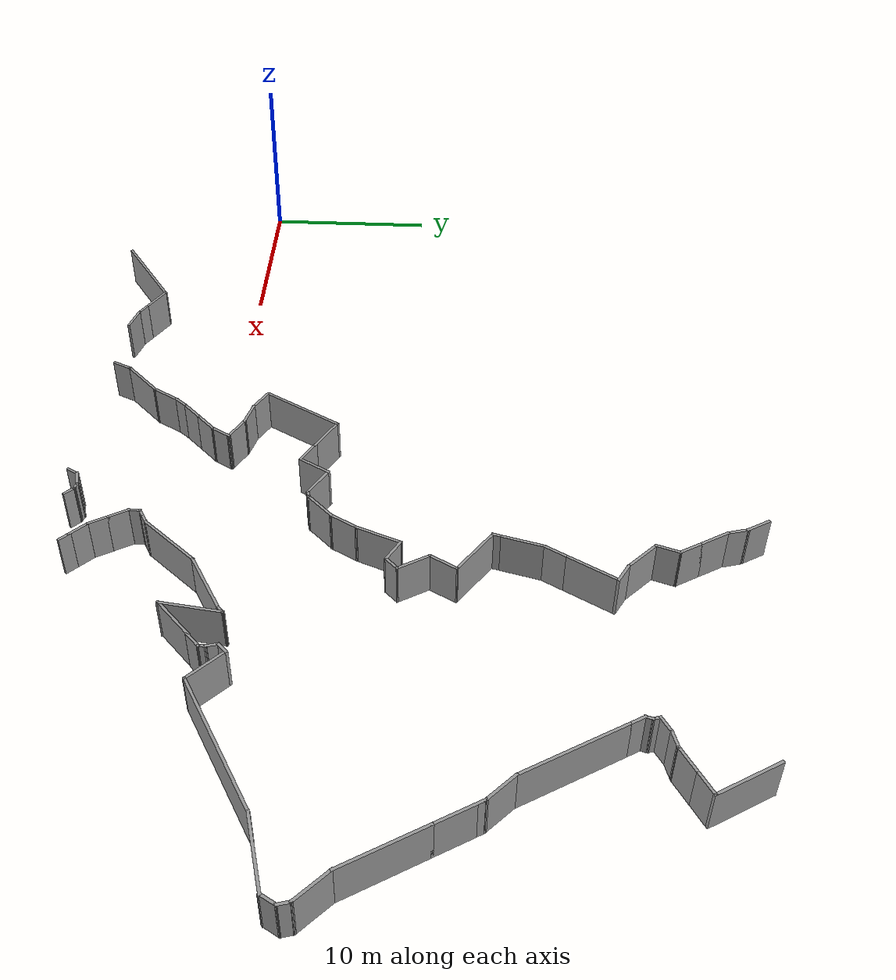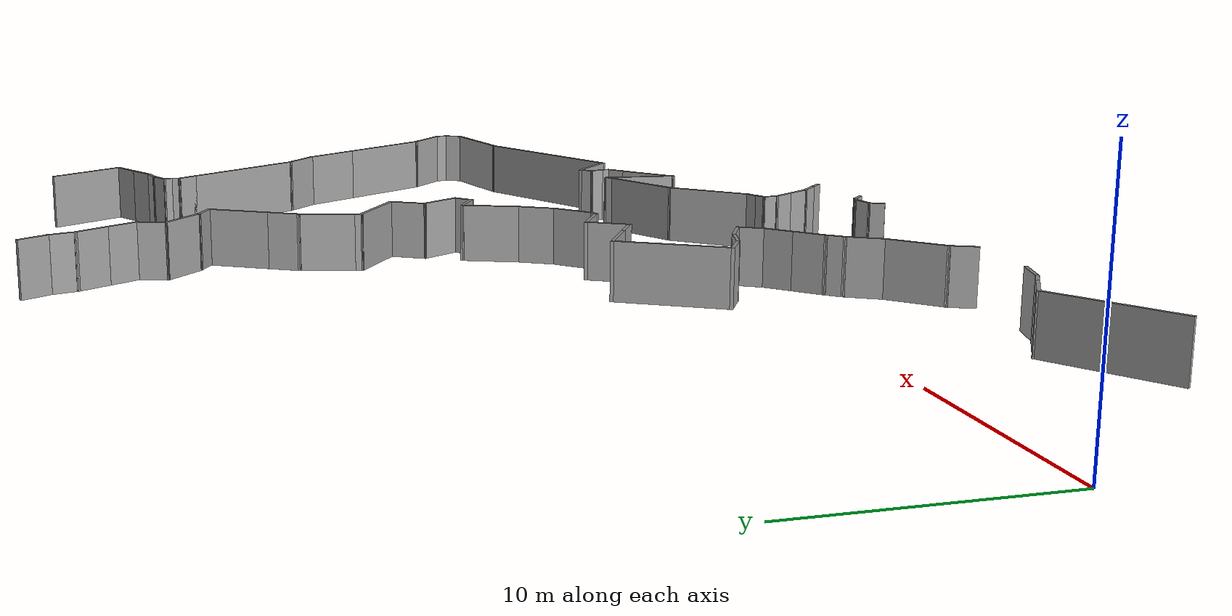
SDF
<sdf version="1.7">
 <model name="office_track1">
  <pose>2.3626 4.43866 0 0 -0 0</pose>
  <link name="Wall_178">
   <collision name="Wall_178_Collision">
    <geometry><box><size>1.75 0.15 2.5</size></box></geometry>
    <pose>0 0 1.25 0 -0 0</pose>
   </collision>
   <visual name="Wall_178_Visual">
    <pose>0 0 1.25 0 -0 0</pose>
    <geometry><box><size>1.75 0.15 2.5</size></box></geometry>
    <material>
     <script><uri>file://media/materials/scripts/gazebo.material</uri><name>Gazebo/Grey</name></script>
     <ambient>1 1 1 1</ambient>
    </material>
    <meta><layer>0</layer></meta>
   </visual>
   <pose>10.6173 -10.4052 0 0 -0 -0.523599</pose>
  </link>
  <link name="Wall_179">
   <collision name="Wall_179_Collision">
    <geometry><box><size>1 0.15 2.5</size></box></geometry>
    <pose>0 0 1.25 0 -0 0</pose>
   </collision>
   <visual name="Wall_179_Visual">
    <pose>0 0 1.25 0 -0 0</pose>
    <geometry><box><size>1 0.15 2.5</size></box></geometry>
    <material>
     <script><uri>file://media/materials/scripts/gazebo.material</uri><name>Gazebo/Grey</name></script>
     <ambient>1 1 1 1</ambient>
    </material>
    <meta><layer>0</layer></meta>
   </visual>
   <pose>11.6781 -11.0177 0 0 -0 -0.523599</pose>
  </link>
  <link name="Wall_180">
   <collision name="Wall_180_Collision">
    <geometry><box><size>1.5 0.15 2.5</size></box></geometry>
    <pose>0 0 1.25 0 -0 0</pose>
   </collision>
   <visual name="Wall_180_Visual">
    <pose>0 0 1.25 0 -0 0</pose>
    <geometry><box><size>1.5 0.15 2.5</size></box></geometry>
    <material>
     <script><uri>file://media/materials/scripts/gazebo.material</uri><name>Gazebo/Grey</name></script>
     <ambient>1 1 1 1</ambient>
    </material>
    <meta><layer>0</layer></meta>
   </visual>
   <pose>12.6982 -11.4049 0 0 -0 -0.261799</pose>
  </link>
  <link name="Wall_184">
   <collision name="Wall_184_Collision">
    <geometry><box><size>5.59276 0.15 2.5</size></box></geometry>
    <pose>0 0 1.25 0 -0 0</pose>
   </collision>
   <visual name="Wall_184_Visual">
    <pose>0 0 1.25 0 -0 0</pose>
    <geometry><box><size>5.59276 0.15 2.5</size></box></geometry>
    <material>
     <script><uri>file://media/materials/scripts/gazebo.material</uri><name>Gazebo/Grey</name></script>
     <ambient>1 1 1 1</ambient>
    </material>
    <meta><layer>0</layer></meta>
   </visual>
   <pose>7.66821 -11.5269 0 0 -0 -2.54824</pose>
  </link>
  <link name="Wall_186">
   <collision name="Wall_186_Collision">
    <geometry><box><size>1.75 0.15 2.5</size></box></geometry>
    <pose>0 0 1.25 0 -0 0</pose>
   </collision>
   <visual name="Wall_186_Visual">
    <pose>0 0 1.25 0 -0 0</pose>
    <geometry><box><size>1.75 0.15 2.5</size></box></geometry>
    <material>
     <script><uri>file://media/materials/scripts/gazebo.material</uri><name>Gazebo/Grey</name></script>
     <ambient>1 1 1 1</ambient>
    </material>
    <meta><layer>0</layer></meta>
   </visual>
   <pose>19.7211 -8.10952 0 0 -0 -2.0944</pose>
  </link>
  <link name="Wall_187">
   <collision name="Wall_187_Collision">
    <geometry><box><size>2.75 0.15 2.5</size></box></geometry>
    <pose>0 0 1.25 0 -0 0</pose>
   </collision>
   <visual name="Wall_187_Visual">
    <pose>0 0 1.25 0 -0 0</pose>
    <geometry><box><size>2.75 0.15 2.5</size></box></geometry>
    <material>
     <script><uri>file://media/materials/scripts/gazebo.material</uri><name>Gazebo/Grey</name></script>
     <ambient>1 1 1 1</ambient>
    </material>
    <meta><layer>0</layer></meta>
   </visual>
   <pose>18.4019 -9.72158 0 0 -0 -2.35619</pose>
  </link>
  <link name="Wall_188">
   <collision name="Wall_188_Collision">
    <geometry><box><size>1.24867 0.15 2.5</size></box></geometry>
    <pose>0 0 1.25 0 -0 0</pose>
   </collision>
   <visual name="Wall_188_Visual">
    <pose>0 0 1.25 0 -0 0</pose>
    <geometry><box><size>1.24867 0.15 2.5</size></box></geometry>
    <material>
     <script><uri>file://media/materials/scripts/gazebo.material</uri><name>Gazebo/Grey</name></script>
     <ambient>1 1 1 1</ambient>
    </material>
    <meta><layer>0</layer></meta>
   </visual>
   <pose>17.2513 -11.1391 0 0 -0 -2.00555</pose>
  </link>
  <link name="Wall_191">
   <collision name="Wall_191_Collision">
    <geometry><box><size>1.25 0.15 2.5</size></box></geometry>
    <pose>0 0 1.25 0 -0 0</pose>
   </collision>
   <visual name="Wall_191_Visual">
    <pose>0 0 1.25 0 -0 0</pose>
    <geometry><box><size>1.25 0.15 2.5</size></box></geometry>
    <material>
     <script><uri>file://media/materials/scripts/gazebo.material</uri><name>Gazebo/Grey</name></script>
     <ambient>1 1 1 1</ambient>
    </material>
    <meta><layer>0</layer></meta>
   </visual>
   <pose>22.802 -4.42998 0 0 -0 -2.0944</pose>
  </link>
  <link name="Wall_192">
   <collision name="Wall_192_Collision">
    <geometry><box><size>1.5 0.15 2.5</size></box></geometry>
    <pose>0 0 1.25 0 -0 0</pose>
   </collision>
   <visual name="Wall_192_Visual">
    <pose>0 0 1.25 0 -0 0</pose>
    <geometry><box><size>1.5 0.15 2.5</size></box></geometry>
    <material>
     <script><uri>file://media/materials/scripts/gazebo.material</uri><name>Gazebo/Grey</name></script>
     <ambient>1 1 1 1</ambient>
    </material>
    <meta><layer>0</layer></meta>
   </visual>
   <pose>22.0497 -5.38359 0 0 -0 -2.35619</pose>
  </link>
  <link name="Wall_193">
   <collision name="Wall_193_Collision">
    <geometry><box><size>1.5 0.15 2.5</size></box></geometry>
    <pose>0 0 1.25 0 -0 0</pose>
   </collision>
   <visual name="Wall_193_Visual">
    <pose>0 0 1.25 0 -0 0</pose>
    <geometry><box><size>1.5 0.15 2.5</size></box></geometry>
    <material>
     <script><uri>file://media/materials/scripts/gazebo.material</uri><name>Gazebo/Grey</name></script>
     <ambient>1 1 1 1</ambient>
    </material>
    <meta><layer>0</layer></meta>
   </visual>
   <pose>21.0951 -6.33819 0 0 -0 -2.35619</pose>
  </link>
  <link name="Wall_194">
   <collision name="Wall_194_Collision">
    <geometry><box><size>0.929811 0.15 2.5</size></box></geometry>
    <pose>0 0 1.25 0 -0 0</pose>
   </collision>
   <visual name="Wall_194_Visual">
    <pose>0 0 1.25 0 -0 0</pose>
    <geometry><box><size>0.929811 0.15 2.5</size></box></geometry>
    <material>
     <script><uri>file://media/materials/scripts/gazebo.material</uri><name>Gazebo/Grey</name></script>
     <ambient>1 1 1 1</ambient>
    </material>
    <meta><layer>0</layer></meta>
   </visual>
   <pose>20.3695 -7.11609 0 0 -0 -2.26122</pose>
  </link>
  <link name="Wall_196">
   <collision name="Wall_196_Collision">
    <geometry><box><size>1.5 0.15 2.5</size></box></geometry>
    <pose>0 0 1.25 0 -0 0</pose>
   </collision>
   <visual name="Wall_196_Visual">
    <pose>0 0 1.25 0 -0 0</pose>
    <geometry><box><size>1.5 0.15 2.5</size></box></geometry>
    <material>
     <script><uri>file://media/materials/scripts/gazebo.material</uri><name>Gazebo/Grey</name></script>
     <ambient>1 1 1 1</ambient>
    </material>
    <meta><layer>0</layer></meta>
   </visual>
   <pose>19.9361 -2.57714 0 0 -0 -0.523599</pose>
  </link>
  <link name="Wall_197">
   <collision name="Wall_197_Collision">
    <geometry><box><size>1.5 0.15 2.5</size></box></geometry>
    <pose>0 0 1.25 0 -0 0</pose>
   </collision>
   <visual name="Wall_197_Visual">
    <pose>0 0 1.25 0 -0 0</pose>
    <geometry><box><size>1.5 0.15 2.5</size></box></geometry>
    <material>
     <script><uri>file://media/materials/scripts/gazebo.material</uri><name>Gazebo/Grey</name></script>
     <ambient>1 1 1 1</ambient>
    </material>
    <meta><layer>0</layer></meta>
   </visual>
   <pose>21.1727 -3.08935 0 0 -0 -0.261799</pose>
  </link>
  <link name="Wall_198">
   <collision name="Wall_198_Collision">
    <geometry><box><size>1.57958 0.15 2.5</size></box></geometry>
    <pose>0 0 1.25 0 -0 0</pose>
   </collision>
   <visual name="Wall_198_Visual">
    <pose>0 0 1.25 0 -0 0</pose>
    <geometry><box><size>1.57958 0.15 2.5</size></box></geometry>
    <material>
     <script><uri>file://media/materials/scripts/gazebo.material</uri><name>Gazebo/Grey</name></script>
     <ambient>1 1 1 1</ambient>
    </material>
    <meta><layer>0</layer></meta>
   </visual>
   <pose>22.4508 -3.60886 0 0 -0 -0.503385</pose>
  </link>
  <link name="Wall_200">
   <collision name="Wall_200_Collision">
    <geometry><box><size>5 0.15 2.5</size></box></geometry>
    <pose>0 0 1.25 0 -0 0</pose>
   </collision>
   <visual name="Wall_200_Visual">
    <pose>0 0 1.25 0 -0 0</pose>
    <geometry><box><size>5 0.15 2.5</size></box></geometry>
    <material>
     <script><uri>file://media/materials/scripts/gazebo.material</uri><name>Gazebo/Grey</name></script>
     <ambient>1 1 1 1</ambient>
    </material>
    <meta><layer>0</layer></meta>
   </visual>
   <pose>20.5641 -0.139533 0 0 -0 1.0472</pose>
  </link>
  <link name="Wall_201">
   <collision name="Wall_201_Collision">
    <geometry><box><size>2.25 0.15 2.5</size></box></geometry>
    <pose>0 0 1.25 0 -0 0</pose>
   </collision>
   <visual name="Wall_201_Visual">
    <pose>0 0 1.25 0 -0 0</pose>
    <geometry><box><size>2.25 0.15 2.5</size></box></geometry>
    <material>
     <script><uri>file://media/materials/scripts/gazebo.material</uri><name>Gazebo/Grey</name></script>
     <ambient>1 1 1 1</ambient>
    </material>
    <meta><layer>0</layer></meta>
   </visual>
   <pose>22.6859 1.43558 0 0 -0 -0.523599</pose>
  </link>
  <link name="Wall_202">
   <collision name="Wall_202_Collision">
    <geometry><box><size>1.5 0.15 2.5</size></box></geometry>
    <pose>0 0 1.25 0 -0 0</pose>
   </collision>
   <visual name="Wall_202_Visual">
    <pose>0 0 1.25 0 -0 0</pose>
    <geometry><box><size>1.5 0.15 2.5</size></box></geometry>
    <material>
     <script><uri>file://media/materials/scripts/gazebo.material</uri><name>Gazebo/Grey</name></script>
     <ambient>1 1 1 1</ambient>
    </material>
    <meta><layer>0</layer></meta>
   </visual>
   <pose>24.1798 0.573079 0 0 -0 -0.523599</pose>
  </link>
  <link name="Wall_203">
   <collision name="Wall_203_Collision">
    <geometry><box><size>2 0.15 2.5</size></box></geometry>
    <pose>0 0 1.25 0 -0 0</pose>
   </collision>
   <visual name="Wall_203_Visual">
    <pose>0 0 1.25 0 -0 0</pose>
    <geometry><box><size>2 0.15 2.5</size></box></geometry>
    <material>
     <script><uri>file://media/materials/scripts/gazebo.material</uri><name>Gazebo/Grey</name></script>
     <ambient>1 1 1 1</ambient>
    </material>
    <meta><layer>0</layer></meta>
   </visual>
   <pose>25.2269 1.03665 0 0 -0 1.0472</pose>
  </link>
  <link name="Wall_204">
   <collision name="Wall_204_Collision">
    <geometry><box><size>2 0.15 2.5</size></box></geometry>
    <pose>0 0 1.25 0 -0 0</pose>
   </collision>
   <visual name="Wall_204_Visual">
    <pose>0 0 1.25 0 -0 0</pose>
    <geometry><box><size>2 0.15 2.5</size></box></geometry>
    <material>
     <script><uri>file://media/materials/scripts/gazebo.material</uri><name>Gazebo/Grey</name></script>
     <ambient>1 1 1 1</ambient>
    </material>
    <meta><layer>0</layer></meta>
   </visual>
   <pose>26.4904 1.37523 0 0 -0 -0.523599</pose>
  </link>
  <link name="Wall_205">
   <collision name="Wall_205_Collision">
    <geometry><box><size>0.5 0.15 2.5</size></box></geometry>
    <pose>0 0 1.25 0 -0 0</pose>
   </collision>
   <visual name="Wall_205_Visual">
    <pose>0 0 1.25 0 -0 0</pose>
    <geometry><box><size>0.5 0.15 2.5</size></box></geometry>
    <material>
     <script><uri>file://media/materials/scripts/gazebo.material</uri><name>Gazebo/Grey</name></script>
     <ambient>1 1 1 1</ambient>
    </material>
    <meta><layer>0</layer></meta>
   </visual>
   <pose>27.4605 0.95802 0 0 -0 0.261799</pose>
  </link>
  <link name="Wall_206">
   <collision name="Wall_206_Collision">
    <geometry><box><size>2 0.15 2.5</size></box></geometry>
    <pose>0 0 1.25 0 -0 0</pose>
   </collision>
   <visual name="Wall_206_Visual">
    <pose>0 0 1.25 0 -0 0</pose>
    <geometry><box><size>2 0.15 2.5</size></box></geometry>
    <material>
     <script><uri>file://media/materials/scripts/gazebo.material</uri><name>Gazebo/Grey</name></script>
     <ambient>1 1 1 1</ambient>
    </material>
    <meta><layer>0</layer></meta>
   </visual>
   <pose>28.2837 1.65739 0 0 -0 0.785398</pose>
  </link>
  <link name="Wall_207">
   <collision name="Wall_207_Collision">
    <geometry><box><size>1.75 0.15 2.5</size></box></geometry>
    <pose>0 0 1.25 0 -0 0</pose>
   </collision>
   <visual name="Wall_207_Visual">
    <pose>0 0 1.25 0 -0 0</pose>
    <geometry><box><size>1.75 0.15 2.5</size></box></geometry>
    <material>
     <script><uri>file://media/materials/scripts/gazebo.material</uri><name>Gazebo/Grey</name></script>
     <ambient>1 1 1 1</ambient>
    </material>
    <meta><layer>0</layer></meta>
   </visual>
   <pose>29.3377 3.00428 0 0 -0 1.0472</pose>
  </link>
  <link name="Wall_209">
   <collision name="Wall_209_Collision">
    <geometry><box><size>2.67086 0.15 2.5</size></box></geometry>
    <pose>0 0 1.25 0 -0 0</pose>
   </collision>
   <visual name="Wall_209_Visual">
    <pose>0 0 1.25 0 -0 0</pose>
    <geometry><box><size>2.67086 0.15 2.5</size></box></geometry>
    <material>
     <script><uri>file://media/materials/scripts/gazebo.material</uri><name>Gazebo/Grey</name></script>
     <ambient>1 1 1 1</ambient>
    </material>
    <meta><layer>0</layer></meta>
   </visual>
   <pose>30.2114 4.86513 0 0 -0 -1.95608</pose>
  </link>
  <link name="Wall_211">
   <collision name="Wall_211_Collision">
    <geometry><box><size>1.5 0.15 2.5</size></box></geometry>
    <pose>0 0 1.25 0 -0 0</pose>
   </collision>
   <visual name="Wall_211_Visual">
    <pose>0 0 1.25 0 -0 0</pose>
    <geometry><box><size>1.5 0.15 2.5</size></box></geometry>
    <material>
     <script><uri>file://media/materials/scripts/gazebo.material</uri><name>Gazebo/Grey</name></script>
     <ambient>1 1 1 1</ambient>
    </material>
    <meta><layer>0</layer></meta>
   </visual>
   <pose>31.2697 5.69566 0 0 -0 -0.523599</pose>
  </link>
  <link name="Wall_212">
   <collision name="Wall_212_Collision">
    <geometry><box><size>1 0.15 2.5</size></box></geometry>
    <pose>0 0 1.25 0 -0 0</pose>
   </collision>
   <visual name="Wall_212_Visual">
    <pose>0 0 1.25 0 -0 0</pose>
    <geometry><box><size>1 0.15 2.5</size></box></geometry>
    <material>
     <script><uri>file://media/materials/scripts/gazebo.material</uri><name>Gazebo/Grey</name></script>
     <ambient>1 1 1 1</ambient>
    </material>
    <meta><layer>0</layer></meta>
   </visual>
   <pose>32.1548 5.65868 0 0 -0 0.785398</pose>
  </link>
  <link name="Wall_213">
   <collision name="Wall_213_Collision">
    <geometry><box><size>2 0.15 2.5</size></box></geometry>
    <pose>0 0 1.25 0 -0 0</pose>
   </collision>
   <visual name="Wall_213_Visual">
    <pose>0 0 1.25 0 -0 0</pose>
    <geometry><box><size>2 0.15 2.5</size></box></geometry>
    <material>
     <script><uri>file://media/materials/scripts/gazebo.material</uri><name>Gazebo/Grey</name></script>
     <ambient>1 1 1 1</ambient>
    </material>
    <meta><layer>0</layer></meta>
   </visual>
   <pose>31.9928 6.76027 0 0 -0 2.0944</pose>
  </link>
  <link name="Wall_214">
   <collision name="Wall_214_Collision">
    <geometry><box><size>1.75 0.15 2.5</size></box></geometry>
    <pose>0 0 1.25 0 -0 0</pose>
   </collision>
   <visual name="Wall_214_Visual">
    <pose>0 0 1.25 0 -0 0</pose>
    <geometry><box><size>1.75 0.15 2.5</size></box></geometry>
    <material>
     <script><uri>file://media/materials/scripts/gazebo.material</uri><name>Gazebo/Grey</name></script>
     <ambient>1 1 1 1</ambient>
    </material>
    <meta><layer>0</layer></meta>
   </visual>
   <pose>31.9303 8.25416 0 0 -0 1.0472</pose>
  </link>
  <link name="Wall_216">
   <collision name="Wall_216_Collision">
    <geometry><box><size>1.5 0.15 2.5</size></box></geometry>
    <pose>0 0 1.25 0 -0 0</pose>
   </collision>
   <visual name="Wall_216_Visual">
    <pose>0 0 1.25 0 -0 0</pose>
    <geometry><box><size>1.5 0.15 2.5</size></box></geometry>
    <material>
     <script><uri>file://media/materials/scripts/gazebo.material</uri><name>Gazebo/Grey</name></script>
     <ambient>1 1 1 1</ambient>
    </material>
    <meta><layer>0</layer></meta>
   </visual>
   <pose>30.9073 13.9138 0 0 -0 -2.0944</pose>
  </link>
  <link name="Wall_217">
   <collision name="Wall_217_Collision">
    <geometry><box><size>2.5 0.15 2.5</size></box></geometry>
    <pose>0 0 1.25 0 -0 0</pose>
   </collision>
   <visual name="Wall_217_Visual">
    <pose>0 0 1.25 0 -0 0</pose>
    <geometry><box><size>2.5 0.15 2.5</size></box></geometry>
    <material>
     <script><uri>file://media/materials/scripts/gazebo.material</uri><name>Gazebo/Grey</name></script>
     <ambient>1 1 1 1</ambient>
    </material>
    <meta><layer>0</layer></meta>
   </visual>
   <pose>30.2657 12.1942 0 0 -0 -1.8326</pose>
  </link>
  <link name="Wall_218">
   <collision name="Wall_218_Collision">
    <geometry><box><size>0.5 0.15 2.5</size></box></geometry>
    <pose>0 0 1.25 0 -0 0</pose>
   </collision>
   <visual name="Wall_218_Visual">
    <pose>0 0 1.25 0 -0 0</pose>
    <geometry><box><size>0.5 0.15 2.5</size></box></geometry>
    <material>
     <script><uri>file://media/materials/scripts/gazebo.material</uri><name>Gazebo/Grey</name></script>
     <ambient>1 1 1 1</ambient>
    </material>
    <meta><layer>0</layer></meta>
   </visual>
   <pose>29.9163 10.8902 0 0 -0 -1.8326</pose>
  </link>
  <link name="Wall_219">
   <collision name="Wall_219_Collision">
    <geometry><box><size>3.1825 0.15 2.5</size></box></geometry>
    <pose>0 0 1.25 0 -0 0</pose>
   </collision>
   <visual name="Wall_219_Visual">
    <pose>0 0 1.25 0 -0 0</pose>
    <geometry><box><size>3.1825 0.15 2.5</size></box></geometry>
    <material>
     <script><uri>file://media/materials/scripts/gazebo.material</uri><name>Gazebo/Grey</name></script>
     <ambient>1 1 1 1</ambient>
    </material>
    <meta><layer>0</layer></meta>
   </visual>
   <pose>31.1007 9.8341 0 0 -0 -0.624967</pose>
  </link>
  <link name="Wall_221">
   <collision name="Wall_221_Collision">
    <geometry><box><size>3 0.15 2.5</size></box></geometry>
    <pose>0 0 1.25 0 -0 0</pose>
   </collision>
   <visual name="Wall_221_Visual">
    <pose>0 0 1.25 0 -0 0</pose>
    <geometry><box><size>3 0.15 2.5</size></box></geometry>
    <material>
     <script><uri>file://media/materials/scripts/gazebo.material</uri><name>Gazebo/Grey</name></script>
     <ambient>1 1 1 1</ambient>
    </material>
    <meta><layer>0</layer></meta>
   </visual>
   <pose>31.9573 15.7324 0 0 -0 1.0472</pose>
  </link>
  <link name="Wall_222">
   <collision name="Wall_222_Collision">
    <geometry><box><size>1.25 0.15 2.5</size></box></geometry>
    <pose>0 0 1.25 0 -0 0</pose>
   </collision>
   <visual name="Wall_222_Visual">
    <pose>0 0 1.25 0 -0 0</pose>
    <geometry><box><size>1.25 0.15 2.5</size></box></geometry>
    <material>
     <script><uri>file://media/materials/scripts/gazebo.material</uri><name>Gazebo/Grey</name></script>
     <ambient>1 1 1 1</ambient>
    </material>
    <meta><layer>0</layer></meta>
   </visual>
   <pose>32.1935 17.2415 0 0 -0 2.61799</pose>
  </link>
  <link name="Wall_223">
   <collision name="Wall_223_Collision">
    <geometry><box><size>2.25 0.15 2.5</size></box></geometry>
    <pose>0 0 1.25 0 -0 0</pose>
   </collision>
   <visual name="Wall_223_Visual">
    <pose>0 0 1.25 0 -0 0</pose>
    <geometry><box><size>2.25 0.15 2.5</size></box></geometry>
    <material>
     <script><uri>file://media/materials/scripts/gazebo.material</uri><name>Gazebo/Grey</name></script>
     <ambient>1 1 1 1</ambient>
    </material>
    <meta><layer>0</layer></meta>
   </visual>
   <pose>30.9747 18.259 0 0 -0 2.35619</pose>
  </link>
  <link name="Wall_225">
   <collision name="Wall_225_Collision">
    <geometry><box><size>1.5 0.15 2.5</size></box></geometry>
    <pose>0 0 1.25 0 -0 0</pose>
   </collision>
   <visual name="Wall_225_Visual">
    <pose>0 0 1.25 0 -0 0</pose>
    <geometry><box><size>1.5 0.15 2.5</size></box></geometry>
    <material>
     <script><uri>file://media/materials/scripts/gazebo.material</uri><name>Gazebo/Grey</name></script>
     <ambient>1 1 1 1</ambient>
    </material>
    <meta><layer>0</layer></meta>
   </visual>
   <pose>28.5411 24.395 0 0 -0 -1.0472</pose>
  </link>
  <link name="Wall_226">
   <collision name="Wall_226_Collision">
    <geometry><box><size>1.25 0.15 2.5</size></box></geometry>
    <pose>0 0 1.25 0 -0 0</pose>
   </collision>
   <visual name="Wall_226_Visual">
    <pose>0 0 1.25 0 -0 0</pose>
    <geometry><box><size>1.25 0.15 2.5</size></box></geometry>
    <material>
     <script><uri>file://media/materials/scripts/gazebo.material</uri><name>Gazebo/Grey</name></script>
     <ambient>1 1 1 1</ambient>
    </material>
    <meta><layer>0</layer></meta>
   </visual>
   <pose>29.0209 23.2792 0 0 -0 -1.309</pose>
  </link>
  <link name="Wall_227">
   <collision name="Wall_227_Collision">
    <geometry><box><size>1.75 0.15 2.5</size></box></geometry>
    <pose>0 0 1.25 0 -0 0</pose>
   </collision>
   <visual name="Wall_227_Visual">
    <pose>0 0 1.25 0 -0 0</pose>
    <geometry><box><size>1.75 0.15 2.5</size></box></geometry>
    <material>
     <script><uri>file://media/materials/scripts/gazebo.material</uri><name>Gazebo/Grey</name></script>
     <ambient>1 1 1 1</ambient>
    </material>
    <meta><layer>0</layer></meta>
   </visual>
   <pose>29.5633 22.0551 0 0 -0 -1.0472</pose>
  </link>
  <link name="Wall_228">
   <collision name="Wall_228_Collision">
    <geometry><box><size>1.5 0.15 2.5</size></box></geometry>
    <pose>0 0 1.25 0 -0 0</pose>
   </collision>
   <visual name="Wall_228_Visual">
    <pose>0 0 1.25 0 -0 0</pose>
    <geometry><box><size>1.5 0.15 2.5</size></box></geometry>
    <material>
     <script><uri>file://media/materials/scripts/gazebo.material</uri><name>Gazebo/Grey</name></script>
     <ambient>1 1 1 1</ambient>
    </material>
    <meta><layer>0</layer></meta>
   </visual>
   <pose>30.3008 20.7777 0 0 -0 -1.0472</pose>
  </link>
  <link name="Wall_229">
   <collision name="Wall_229_Collision">
    <geometry><box><size>1.40896 0.15 2.5</size></box></geometry>
    <pose>0 0 1.25 0 -0 0</pose>
   </collision>
   <visual name="Wall_229_Visual">
    <pose>0 0 1.25 0 -0 0</pose>
    <geometry><box><size>1.40896 0.15 2.5</size></box></geometry>
    <material>
     <script><uri>file://media/materials/scripts/gazebo.material</uri><name>Gazebo/Grey</name></script>
     <ambient>1 1 1 1</ambient>
    </material>
    <meta><layer>0</layer></meta>
   </visual>
   <pose>30.4353 19.5973 0 0 -0 -1.89915</pose>
  </link>
  <link name="Wall_317">
   <collision name="Wall_317_Collision">
    <geometry><box><size>3.75 0.15 2.5</size></box></geometry>
    <pose>0 0 1.25 0 -0 0</pose>
   </collision>
   <visual name="Wall_317_Visual">
    <pose>0 0 1.25 0 -0 0</pose>
    <geometry><box><size>3.75 0.15 2.5</size></box></geometry>
    <material>
     <script><uri>file://media/materials/scripts/gazebo.material</uri><name>Gazebo/Grey</name></script>
     <ambient>1 1 1 1</ambient>
    </material>
    <meta><layer>0</layer></meta>
   </visual>
   <pose>43.8433 21.8705 0 0 -0 -1.0472</pose>
  </link>
  <link name="Wall_318">
   <collision name="Wall_318_Collision">
    <geometry><box><size>1.5 0.15 2.5</size></box></geometry>
    <pose>0 0 1.25 0 -0 0</pose>
   </collision>
   <visual name="Wall_318_Visual">
    <pose>0 0 1.25 0 -0 0</pose>
    <geometry><box><size>1.5 0.15 2.5</size></box></geometry>
    <material>
     <script><uri>file://media/materials/scripts/gazebo.material</uri><name>Gazebo/Grey</name></script>
     <ambient>1 1 1 1</ambient>
    </material>
    <meta><layer>0</layer></meta>
   </visual>
   <pose>44.1587 19.9742 0 0 -0 -2.61799</pose>
  </link>
  <link name="Wall_319">
   <collision name="Wall_319_Collision">
    <geometry><box><size>1.5 0.15 2.5</size></box></geometry>
    <pose>0 0 1.25 0 -0 0</pose>
   </collision>
   <visual name="Wall_319_Visual">
    <pose>0 0 1.25 0 -0 0</pose>
    <geometry><box><size>1.5 0.15 2.5</size></box></geometry>
    <material>
     <script><uri>file://media/materials/scripts/gazebo.material</uri><name>Gazebo/Grey</name></script>
     <ambient>1 1 1 1</ambient>
    </material>
    <meta><layer>0</layer></meta>
   </visual>
   <pose>42.9896 19.2992 0 0 -0 -2.61799</pose>
  </link>
  <link name="Wall_320">
   <collision name="Wall_320_Collision">
    <geometry><box><size>1 0.15 2.5</size></box></geometry>
    <pose>0 0 1.25 0 -0 0</pose>
   </collision>
   <visual name="Wall_320_Visual">
    <pose>0 0 1.25 0 -0 0</pose>
    <geometry><box><size>1 0.15 2.5</size></box></geometry>
    <material>
     <script><uri>file://media/materials/scripts/gazebo.material</uri><name>Gazebo/Grey</name></script>
     <ambient>1 1 1 1</ambient>
    </material>
    <meta><layer>0</layer></meta>
   </visual>
   <pose>41.9945 18.8517 0 0 -0 -2.87979</pose>
  </link>
  <link name="Wall_321">
   <collision name="Wall_321_Collision">
    <geometry><box><size>1 0.15 2.5</size></box></geometry>
    <pose>0 0 1.25 0 -0 0</pose>
   </collision>
   <visual name="Wall_321_Visual">
    <pose>0 0 1.25 0 -0 0</pose>
    <geometry><box><size>1 0.15 2.5</size></box></geometry>
    <material>
     <script><uri>file://media/materials/scripts/gazebo.material</uri><name>Gazebo/Grey</name></script>
     <ambient>1 1 1 1</ambient>
    </material>
    <meta><layer>0</layer></meta>
   </visual>
   <pose>41.2159 18.5292 0 0 -0 -2.61799</pose>
  </link>
  <link name="Wall_322">
   <collision name="Wall_322_Collision">
    <geometry><box><size>0.5 0.15 2.5</size></box></geometry>
    <pose>0 0 1.25 0 -0 0</pose>
   </collision>
   <visual name="Wall_322_Visual">
    <pose>0 0 1.25 0 -0 0</pose>
    <geometry><box><size>0.5 0.15 2.5</size></box></geometry>
    <material>
     <script><uri>file://media/materials/scripts/gazebo.material</uri><name>Gazebo/Grey</name></script>
     <ambient>1 1 1 1</ambient>
    </material>
    <meta><layer>0</layer></meta>
   </visual>
   <pose>40.8931 18.1477 0 0 -0 -1.309</pose>
  </link>
  <link name="Wall_323">
   <collision name="Wall_323_Collision">
    <geometry><box><size>0.5 0.15 2.5</size></box></geometry>
    <pose>0 0 1.25 0 -0 0</pose>
   </collision>
   <visual name="Wall_323_Visual">
    <pose>0 0 1.25 0 -0 0</pose>
    <geometry><box><size>0.5 0.15 2.5</size></box></geometry>
    <material>
     <script><uri>file://media/materials/scripts/gazebo.material</uri><name>Gazebo/Grey</name></script>
     <ambient>1 1 1 1</ambient>
    </material>
    <meta><layer>0</layer></meta>
   </visual>
   <pose>40.8931 17.8096 0 0 -0 -1.8326</pose>
  </link>
  <link name="Wall_324">
   <collision name="Wall_324_Collision">
    <geometry><box><size>1 0.15 2.5</size></box></geometry>
    <pose>0 0 1.25 0 -0 0</pose>
   </collision>
   <visual name="Wall_324_Visual">
    <pose>0 0 1.25 0 -0 0</pose>
    <geometry><box><size>1 0.15 2.5</size></box></geometry>
    <material>
     <script><uri>file://media/materials/scripts/gazebo.material</uri><name>Gazebo/Grey</name></script>
     <ambient>1 1 1 1</ambient>
    </material>
    <meta><layer>0</layer></meta>
   </visual>
   <pose>41.0603 17.2725 0 0 -0 -1.0472</pose>
  </link>
  <link name="Wall_326">
   <collision name="Wall_326_Collision">
    <geometry><box><size>6 0.15 2.5</size></box></geometry>
    <pose>0 0 1.25 0 -0 0</pose>
   </collision>
   <visual name="Wall_326_Visual">
    <pose>0 0 1.25 0 -0 0</pose>
    <geometry><box><size>6 0.15 2.5</size></box></geometry>
    <material>
     <script><uri>file://media/materials/scripts/gazebo.material</uri><name>Gazebo/Grey</name></script>
     <ambient>1 1 1 1</ambient>
    </material>
    <meta><layer>0</layer></meta>
   </visual>
   <pose>42.7353 14.3713 0 0 -0 -1.0472</pose>
  </link>
  <link name="Wall_327">
   <collision name="Wall_327_Collision">
    <geometry><box><size>2 0.15 2.5</size></box></geometry>
    <pose>0 0 1.25 0 -0 0</pose>
   </collision>
   <visual name="Wall_327_Visual">
    <pose>0 0 1.25 0 -0 0</pose>
    <geometry><box><size>2 0.15 2.5</size></box></geometry>
    <material>
     <script><uri>file://media/materials/scripts/gazebo.material</uri><name>Gazebo/Grey</name></script>
     <ambient>1 1 1 1</ambient>
    </material>
    <meta><layer>0</layer></meta>
   </visual>
   <pose>44.8519 11.1841 0 0 -0 -0.785398</pose>
  </link>
  <link name="Wall_328">
   <collision name="Wall_328_Collision">
    <geometry><box><size>0.5 0.15 2.5</size></box></geometry>
    <pose>0 0 1.25 0 -0 0</pose>
   </collision>
   <visual name="Wall_328_Visual">
    <pose>0 0 1.25 0 -0 0</pose>
    <geometry><box><size>0.5 0.15 2.5</size></box></geometry>
    <material>
     <script><uri>file://media/materials/scripts/gazebo.material</uri><name>Gazebo/Grey</name></script>
     <ambient>1 1 1 1</ambient>
    </material>
    <meta><layer>0</layer></meta>
   </visual>
   <pose>45.5935 10.3785 0 0 -0 -1.0472</pose>
  </link>
  <link name="Wall_330">
   <collision name="Wall_330_Collision">
    <geometry><box><size>2.75 0.15 2.5</size></box></geometry>
    <pose>0 0 1.25 0 -0 0</pose>
   </collision>
   <visual name="Wall_330_Visual">
    <pose>0 0 1.25 0 -0 0</pose>
    <geometry><box><size>2.75 0.15 2.5</size></box></geometry>
    <material>
     <script><uri>file://media/materials/scripts/gazebo.material</uri><name>Gazebo/Grey</name></script>
     <ambient>1 1 1 1</ambient>
    </material>
    <meta><layer>0</layer></meta>
   </visual>
   <pose>46.156 9.4042 0 0 -0 -1.0472</pose>
  </link>
  <link name="Wall_331">
   <collision name="Wall_331_Collision">
    <geometry><box><size>4.75 0.15 2.5</size></box></geometry>
    <pose>0 0 1.25 0 -0 0</pose>
   </collision>
   <visual name="Wall_331_Visual">
    <pose>0 0 1.25 0 -0 0</pose>
    <geometry><box><size>4.75 0.15 2.5</size></box></geometry>
    <material>
     <script><uri>file://media/materials/scripts/gazebo.material</uri><name>Gazebo/Grey</name></script>
     <ambient>1 1 1 1</ambient>
    </material>
    <meta><layer>0</layer></meta>
   </visual>
   <pose>47.956 6.2865 0 0 -0 -1.0472</pose>
  </link>
  <link name="Wall_332">
   <collision name="Wall_332_Collision">
    <geometry><box><size>2.25 0.15 2.5</size></box></geometry>
    <pose>0 0 1.25 0 -0 0</pose>
   </collision>
   <visual name="Wall_332_Visual">
    <pose>0 0 1.25 0 -0 0</pose>
    <geometry><box><size>2.25 0.15 2.5</size></box></geometry>
    <material>
     <script><uri>file://media/materials/scripts/gazebo.material</uri><name>Gazebo/Grey</name></script>
     <ambient>1 1 1 1</ambient>
    </material>
    <meta><layer>0</layer></meta>
   </visual>
   <pose>49.8484 3.55218 0 0 -0 -0.785398</pose>
  </link>
  <link name="Wall_334">
   <collision name="Wall_334_Collision">
    <geometry><box><size>0.75 0.15 2.5</size></box></geometry>
    <pose>0 0 1.25 0 -0 0</pose>
   </collision>
   <visual name="Wall_334_Visual">
    <pose>0 0 1.25 0 -0 0</pose>
    <geometry><box><size>0.75 0.15 2.5</size></box></geometry>
    <material>
     <script><uri>file://media/materials/scripts/gazebo.material</uri><name>Gazebo/Grey</name></script>
     <ambient>1 1 1 1</ambient>
    </material>
    <meta><layer>0</layer></meta>
   </visual>
   <pose>50.6686 2.51994 0 0 -0 -1.309</pose>
  </link>
  <link name="Wall_335">
   <collision name="Wall_335_Collision">
    <geometry><box><size>1 0.15 2.5</size></box></geometry>
    <pose>0 0 1.25 0 -0 0</pose>
   </collision>
   <visual name="Wall_335_Visual">
    <pose>0 0 1.25 0 -0 0</pose>
    <geometry><box><size>1 0.15 2.5</size></box></geometry>
    <material>
     <script><uri>file://media/materials/scripts/gazebo.material</uri><name>Gazebo/Grey</name></script>
     <ambient>1 1 1 1</ambient>
    </material>
    <meta><layer>0</layer></meta>
   </visual>
   <pose>50.5337 1.8621 0 0 -0 -2.0944</pose>
  </link>
  <link name="Wall_336">
   <collision name="Wall_336_Collision">
    <geometry><box><size>4 0.15 2.5</size></box></geometry>
    <pose>0 0 1.25 0 -0 0</pose>
   </collision>
   <visual name="Wall_336_Visual">
    <pose>0 0 1.25 0 -0 0</pose>
    <geometry><box><size>4 0.15 2.5</size></box></geometry>
    <material>
     <script><uri>file://media/materials/scripts/gazebo.material</uri><name>Gazebo/Grey</name></script>
     <ambient>1 1 1 1</ambient>
    </material>
    <meta><layer>0</layer></meta>
   </visual>
   <pose>48.4618 0.995818 0 0 -0 -2.87979</pose>
  </link>
  <link name="Wall_337">
   <collision name="Wall_337_Collision">
    <geometry><box><size>8 0.15 2.5</size></box></geometry>
    <pose>0 0 1.25 0 -0 0</pose>
   </collision>
   <visual name="Wall_337_Visual">
    <pose>0 0 1.25 0 -0 0</pose>
    <geometry><box><size>8 0.15 2.5</size></box></geometry>
    <material>
     <script><uri>file://media/materials/scripts/gazebo.material</uri><name>Gazebo/Grey</name></script>
     <ambient>1 1 1 1</ambient>
    </material>
    <meta><layer>0</layer></meta>
   </visual>
   <pose>43.2032 -1.46491 0 0 -0 -2.61799</pose>
  </link>
  <link name="Wall_338">
   <collision name="Wall_338_Collision">
    <geometry><box><size>2.5 0.15 2.5</size></box></geometry>
    <pose>0 0 1.25 0 -0 0</pose>
   </collision>
   <visual name="Wall_338_Visual">
    <pose>0 0 1.25 0 -0 0</pose>
    <geometry><box><size>2.5 0.15 2.5</size></box></geometry>
    <material>
     <script><uri>file://media/materials/scripts/gazebo.material</uri><name>Gazebo/Grey</name></script>
     <ambient>1 1 1 1</ambient>
    </material>
    <meta><layer>0</layer></meta>
   </visual>
   <pose>38.9732 -2.59656 0 0 -0 2.35619</pose>
  </link>
  <link name="Wall_339">
   <collision name="Wall_339_Collision">
    <geometry><box><size>0.75 0.15 2.5</size></box></geometry>
    <pose>0 0 1.25 0 -0 0</pose>
   </collision>
   <visual name="Wall_339_Visual">
    <pose>0 0 1.25 0 -0 0</pose>
    <geometry><box><size>0.75 0.15 2.5</size></box></geometry>
    <material>
     <script><uri>file://media/materials/scripts/gazebo.material</uri><name>Gazebo/Grey</name></script>
     <ambient>1 1 1 1</ambient>
    </material>
    <meta><layer>0</layer></meta>
   </visual>
   <pose>37.9303 -1.97784 0 0 -0 -2.35619</pose>
  </link>
  <link name="Wall_340">
   <collision name="Wall_340_Collision">
    <geometry><box><size>0.75 0.15 2.5</size></box></geometry>
    <pose>0 0 1.25 0 -0 0</pose>
   </collision>
   <visual name="Wall_340_Visual">
    <pose>0 0 1.25 0 -0 0</pose>
    <geometry><box><size>0.75 0.15 2.5</size></box></geometry>
    <material>
     <script><uri>file://media/materials/scripts/gazebo.material</uri><name>Gazebo/Grey</name></script>
     <ambient>1 1 1 1</ambient>
    </material>
    <meta><layer>0</layer></meta>
   </visual>
   <pose>37.7958 -2.47975 0 0 -0 -1.309</pose>
  </link>
  <link name="Wall_341">
   <collision name="Wall_341_Collision">
    <geometry><box><size>0.5 0.15 2.5</size></box></geometry>
    <pose>0 0 1.25 0 -0 0</pose>
   </collision>
   <visual name="Wall_341_Visual">
    <pose>0 0 1.25 0 -0 0</pose>
    <geometry><box><size>0.5 0.15 2.5</size></box></geometry>
    <material>
     <script><uri>file://media/materials/scripts/gazebo.material</uri><name>Gazebo/Grey</name></script>
     <ambient>1 1 1 1</ambient>
    </material>
    <meta><layer>0</layer></meta>
   </visual>
   <pose>37.8734 -2.94453 0 0 -0 -1.5708</pose>
  </link>
  <link name="Wall_342">
   <collision name="Wall_342_Collision">
    <geometry><box><size>1.09396 0.15 2.5</size></box></geometry>
    <pose>0 0 1.25 0 -0 0</pose>
   </collision>
   <visual name="Wall_342_Visual">
    <pose>0 0 1.25 0 -0 0</pose>
    <geometry><box><size>1.09396 0.15 2.5</size></box></geometry>
    <material>
     <script><uri>file://media/materials/scripts/gazebo.material</uri><name>Gazebo/Grey</name></script>
     <ambient>1 1 1 1</ambient>
    </material>
    <meta><layer>0</layer></meta>
   </visual>
   <pose>37.531 -3.44441 0 0 -0 -2.3824</pose>
  </link>
  <link name="Wall_344">
   <collision name="Wall_344_Collision">
    <geometry><box><size>3.75 0.15 2.5</size></box></geometry>
    <pose>0 0 1.25 0 -0 0</pose>
   </collision>
   <visual name="Wall_344_Visual">
    <pose>0 0 1.25 0 -0 0</pose>
    <geometry><box><size>3.75 0.15 2.5</size></box></geometry>
    <material>
     <script><uri>file://media/materials/scripts/gazebo.material</uri><name>Gazebo/Grey</name></script>
     <ambient>1 1 1 1</ambient>
    </material>
    <meta><layer>0</layer></meta>
   </visual>
   <pose>33.9329 -3.44965 0 0 -0 0.523599</pose>
  </link>
  <link name="Wall_345">
   <collision name="Wall_345_Collision">
    <geometry><box><size>0.5 0.15 2.5</size></box></geometry>
    <pose>0 0 1.25 0 -0 0</pose>
   </collision>
   <visual name="Wall_345_Visual">
    <pose>0 0 1.25 0 -0 0</pose>
    <geometry><box><size>0.5 0.15 2.5</size></box></geometry>
    <material>
     <script><uri>file://media/materials/scripts/gazebo.material</uri><name>Gazebo/Grey</name></script>
     <ambient>1 1 1 1</ambient>
    </material>
    <meta><layer>0</layer></meta>
   </visual>
   <pose>35.6155 -2.4259 0 0 -0 0.785398</pose>
  </link>
  <link name="Wall_346">
   <collision name="Wall_346_Collision">
    <geometry><box><size>3.43153 0.15 2.5</size></box></geometry>
    <pose>0 0 1.25 0 -0 0</pose>
   </collision>
   <visual name="Wall_346_Visual">
    <pose>0 0 1.25 0 -0 0</pose>
    <geometry><box><size>3.43153 0.15 2.5</size></box></geometry>
    <material>
     <script><uri>file://media/materials/scripts/gazebo.material</uri><name>Gazebo/Grey</name></script>
     <ambient>1 1 1 1</ambient>
    </material>
    <meta><layer>0</layer></meta>
   </visual>
   <pose>35.5207 -3.92829 0 0 -0 -1.70444</pose>
  </link>
  <link name="Wall_347">
   <collision name="Wall_347_Collision">
    <geometry><box><size>2.74734 0.15 2.5</size></box></geometry>
    <pose>0 0 1.25 0 -0 0</pose>
   </collision>
   <visual name="Wall_347_Visual">
    <pose>0 0 1.25 0 -0 0</pose>
    <geometry><box><size>2.74734 0.15 2.5</size></box></geometry>
    <material>
     <script><uri>file://media/materials/scripts/gazebo.material</uri><name>Gazebo/Grey</name></script>
     <ambient>1 1 1 1</ambient>
    </material>
    <meta><layer>0</layer></meta>
   </visual>
   <pose>36.2454 -4.62688 0 0 -0 0.757762</pose>
  </link>
  <link name="Wall_349">
   <collision name="Wall_349_Collision">
    <geometry><box><size>0.75 0.15 2.5</size></box></geometry>
    <pose>0 0 1.25 0 -0 0</pose>
   </collision>
   <visual name="Wall_349_Visual">
    <pose>0 0 1.25 0 -0 0</pose>
    <geometry><box><size>0.75 0.15 2.5</size></box></geometry>
    <material>
     <script><uri>file://media/materials/scripts/gazebo.material</uri><name>Gazebo/Grey</name></script>
     <ambient>1 1 1 1</ambient>
    </material>
    <meta><layer>0</layer></meta>
   </visual>
   <pose>29.1035 -7.98491 0 0 -0 1.5708</pose>
  </link>
  <link name="Wall_350">
   <collision name="Wall_350_Collision">
    <geometry><box><size>0.5 0.15 2.5</size></box></geometry>
    <pose>0 0 1.25 0 -0 0</pose>
   </collision>
   <visual name="Wall_350_Visual">
    <pose>0 0 1.25 0 -0 0</pose>
    <geometry><box><size>0.5 0.15 2.5</size></box></geometry>
    <material>
     <script><uri>file://media/materials/scripts/gazebo.material</uri><name>Gazebo/Grey</name></script>
     <ambient>1 1 1 1</ambient>
    </material>
    <meta><layer>0</layer></meta>
   </visual>
   <pose>29.255 -7.59741 0 0 -0 0.523599</pose>
  </link>
  <link name="Wall_351">
   <collision name="Wall_351_Collision">
    <geometry><box><size>0.75 0.15 2.5</size></box></geometry>
    <pose>0 0 1.25 0 -0 0</pose>
   </collision>
   <visual name="Wall_351_Visual">
    <pose>0 0 1.25 0 -0 0</pose>
    <geometry><box><size>0.75 0.15 2.5</size></box></geometry>
    <material>
     <script><uri>file://media/materials/scripts/gazebo.material</uri><name>Gazebo/Grey</name></script>
     <ambient>1 1 1 1</ambient>
    </material>
    <meta><layer>0</layer></meta>
   </visual>
   <pose>29.6664 -7.35991 0 0 -0 0.523599</pose>
  </link>
  <link name="Wall_352">
   <collision name="Wall_352_Collision">
    <geometry><box><size>3.91476 0.15 2.5</size></box></geometry>
    <pose>0 0 1.25 0 -0 0</pose>
   </collision>
   <visual name="Wall_352_Visual">
    <pose>0 0 1.25 0 -0 0</pose>
    <geometry><box><size>3.91476 0.15 2.5</size></box></geometry>
    <material>
     <script><uri>file://media/materials/scripts/gazebo.material</uri><name>Gazebo/Grey</name></script>
     <ambient>1 1 1 1</ambient>
    </material>
    <meta><layer>0</layer></meta>
   </visual>
   <pose>31.1501 -5.77978 0 0 -0 0.862924</pose>
  </link>
  <link name="Wall_354">
   <collision name="Wall_354_Collision">
    <geometry><box><size>1.25 0.15 2.5</size></box></geometry>
    <pose>0 0 1.25 0 -0 0</pose>
   </collision>
   <visual name="Wall_354_Visual">
    <pose>0 0 1.25 0 -0 0</pose>
    <geometry><box><size>1.25 0.15 2.5</size></box></geometry>
    <material>
     <script><uri>file://media/materials/scripts/gazebo.material</uri><name>Gazebo/Grey</name></script>
     <ambient>1 1 1 1</ambient>
    </material>
    <meta><layer>0</layer></meta>
   </visual>
   <pose>29.3785 -8.76122 0 0 -0 -1.0472</pose>
  </link>
  <link name="Wall_355">
   <collision name="Wall_355_Collision">
    <geometry><box><size>1.25 0.15 2.5</size></box></geometry>
    <pose>0 0 1.25 0 -0 0</pose>
   </collision>
   <visual name="Wall_355_Visual">
    <pose>0 0 1.25 0 -0 0</pose>
    <geometry><box><size>1.25 0.15 2.5</size></box></geometry>
    <material>
     <script><uri>file://media/materials/scripts/gazebo.material</uri><name>Gazebo/Grey</name></script>
     <ambient>1 1 1 1</ambient>
    </material>
    <meta><layer>0</layer></meta>
   </visual>
   <pose>29.9285 -9.71385 0 0 -0 -1.0472</pose>
  </link>
  <link name="Wall_356">
   <collision name="Wall_356_Collision">
    <geometry><box><size>1.25 0.15 2.5</size></box></geometry>
    <pose>0 0 1.25 0 -0 0</pose>
   </collision>
   <visual name="Wall_356_Visual">
    <pose>0 0 1.25 0 -0 0</pose>
    <geometry><box><size>1.25 0.15 2.5</size></box></geometry>
    <material>
     <script><uri>file://media/materials/scripts/gazebo.material</uri><name>Gazebo/Grey</name></script>
     <ambient>1 1 1 1</ambient>
    </material>
    <meta><layer>0</layer></meta>
   </visual>
   <pose>30.5924 -10.5791 0 0 -0 -0.785398</pose>
  </link>
  <link name="Wall_357">
   <collision name="Wall_357_Collision">
    <geometry><box><size>0.75 0.15 2.5</size></box></geometry>
    <pose>0 0 1.25 0 -0 0</pose>
   </collision>
   <visual name="Wall_357_Visual">
    <pose>0 0 1.25 0 -0 0</pose>
    <geometry><box><size>0.75 0.15 2.5</size></box></geometry>
    <material>
     <script><uri>file://media/materials/scripts/gazebo.material</uri><name>Gazebo/Grey</name></script>
     <ambient>1 1 1 1</ambient>
    </material>
    <meta><layer>0</layer></meta>
   </visual>
   <pose>31.1934 -11.1801 0 0 -0 -0.785398</pose>
  </link>
  <link name="Wall_362">
   <collision name="Wall_362_Collision">
    <geometry><box><size>0.75 0.15 2.5</size></box></geometry>
    <pose>0 0 1.25 0 -0 0</pose>
   </collision>
   <visual name="Wall_362_Visual">
    <pose>0 0 1.25 0 -0 0</pose>
    <geometry><box><size>0.75 0.15 2.5</size></box></geometry>
    <material>
     <script><uri>file://media/materials/scripts/gazebo.material</uri><name>Gazebo/Grey</name></script>
     <ambient>1 1 1 1</ambient>
    </material>
    <meta><layer>0</layer></meta>
   </visual>
   <pose>27.8748 -11.7304 0 0 -0 2.35619</pose>
  </link>
  <link name="Wall_363">
   <collision name="Wall_363_Collision">
    <geometry><box><size>0.5 0.15 2.5</size></box></geometry>
    <pose>0 0 1.25 0 -0 0</pose>
   </collision>
   <visual name="Wall_363_Visual">
    <pose>0 0 1.25 0 -0 0</pose>
    <geometry><box><size>0.5 0.15 2.5</size></box></geometry>
    <material>
     <script><uri>file://media/materials/scripts/gazebo.material</uri><name>Gazebo/Grey</name></script>
     <ambient>1 1 1 1</ambient>
    </material>
    <meta><layer>0</layer></meta>
   </visual>
   <pose>27.4937 -11.473 0 0 -0 2.87979</pose>
  </link>
  <link name="Wall_364">
   <collision name="Wall_364_Collision">
    <geometry><box><size>1 0.15 2.5</size></box></geometry>
    <pose>0 0 1.25 0 -0 0</pose>
   </collision>
   <visual name="Wall_364_Visual">
    <pose>0 0 1.25 0 -0 0</pose>
    <geometry><box><size>1 0.15 2.5</size></box></geometry>
    <material>
     <script><uri>file://media/materials/scripts/gazebo.material</uri><name>Gazebo/Grey</name></script>
     <ambient>1 1 1 1</ambient>
    </material>
    <meta><layer>0</layer></meta>
   </visual>
   <pose>26.9141 -11.5377 0 0 -0 -2.87979</pose>
  </link>
  <link name="Wall_365">
   <collision name="Wall_365_Collision">
    <geometry><box><size>0.75 0.15 2.5</size></box></geometry>
    <pose>0 0 1.25 0 -0 0</pose>
   </collision>
   <visual name="Wall_365_Visual">
    <pose>0 0 1.25 0 -0 0</pose>
    <geometry><box><size>0.75 0.15 2.5</size></box></geometry>
    <material>
     <script><uri>file://media/materials/scripts/gazebo.material</uri><name>Gazebo/Grey</name></script>
     <ambient>1 1 1 1</ambient>
    </material>
    <meta><layer>0</layer></meta>
   </visual>
   <pose>26.3536 -11.9075 0 0 -0 -2.0944</pose>
  </link>
  <static>1</static>
 </model>
</sdf>
